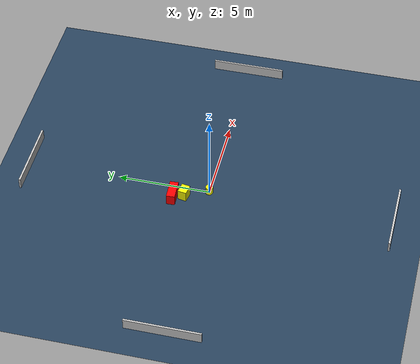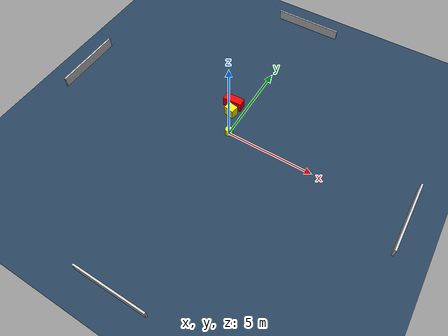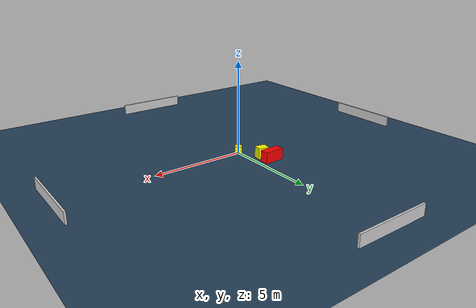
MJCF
<?xml version="1.0" ?>
<mujoco model="generated_environment">
  <option timestep="0.01" integrator="RK4" cone="elliptic"/>
  <default>
    <geom density="1"/>
  </default>
  <asset>
    <texture builtin="gradient" height="3072" name="skybox" rgb1="0.3 0.5 0.7" rgb2="0 0 0" type="skybox" width="512"/>
    <texture builtin="checker" height="300" name="groundplane" rgb1="0.2 0.3 0.4" rgb2="0.1 0.2 0.3" type="2d" width="300"/>
    <material name="groundplane" reflectance="0.2" texrepeat="5 5" texture="groundplane"/>
  </asset>
  <worldbody>
    <light dir="0 0 -1" directional="true" pos="0 0 1.5"/>
    <geom condim="3" friction="0.5 0.005 0.001" material="groundplane" name="floor" pos="0 0 0" size="0 0 0.05" type="plane"/>
    <body name="walls">
      <geom name="wall_1" condim="4" pos="-10.0 0.0 0.3" rgba="0.800000011920929 0.800000011920929 0.800000011920929 1.0" size="0.05 2.0 0.3" type="box"/>
      <geom name="wall_2" condim="4" pos="10.0 0.0 0.3" rgba="0.800000011920929 0.800000011920929 0.800000011920929 1.0" size="0.05 2.0 0.3" type="box"/>
      <geom name="wall_3" condim="4" pos="0.0 -10.0 0.3" rgba="0.800000011920929 0.800000011920929 0.800000011920929 1.0" size="2.0 0.05 0.3" type="box"/>
      <geom name="wall_4" condim="4" pos="0.0 10.0 0.3" rgba="0.800000011920929 0.800000011920929 0.800000011920929 1.0" size="2.0 0.05 0.3" type="box"/>
    </body>
    <body name="robot">
      <joint name="joint_x" type="slide" pos="0 0 0" axis="1 0 0"/>
      <joint name="joint_y" type="slide" pos="0 0 0" axis="0 1 0"/>
      <geom name="robot" type="cylinder" pos="0.0 0.0 0.2" size="0.2 0.2 0.0" mass="5.0" friction="1.0 0.005 0.0001" condim="4" rgba="1.0 1.0 0.0 1.0"/>
    </body>
    <body name="obstacle_1_movable">
      <geom name="obstacle_1_movable" condim="4" pos="-0.6045232848224767 1.2422742023095474 0.3" euler="0 0 79.67992010433613" friction="0.0 0.005 0.001" rgba="1.0 1.0 0.0 1.0" size="0.23517619031857429 0.2914490260815004 0.3" type="box" mass="0.1"/>
      <joint type="free"/>
    </body>
    <body name="obstacle_2_static">
      <geom name="obstacle_2_static" condim="4" pos="-0.7866190771420799 1.838117048698514 0.3" euler="0 0 2.7222122098996993" friction="0.0 0.005 0.001" rgba="1.0 0.0 0.0 1.0" size="0.5557358508733692 0.23116027847241963 0.3" type="box"/>
    </body>
  </worldbody>
  <actuator>
    <motor name="actuator_x" joint="joint_x" gear="1" ctrlrange="-1 1"/>
    <motor name="actuator_y" joint="joint_y" gear="1" ctrlrange="-1 1"/>
  </actuator>
</mujoco>
